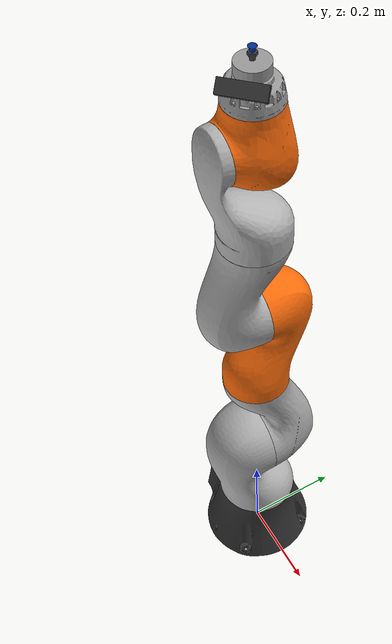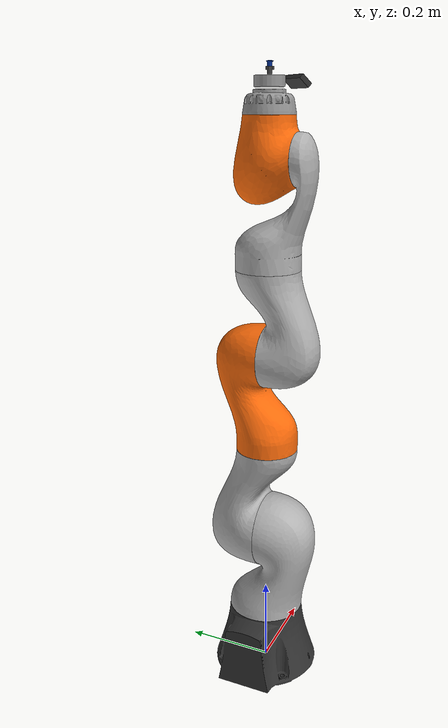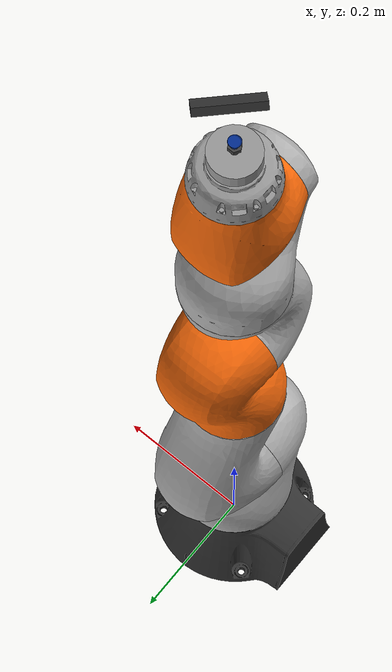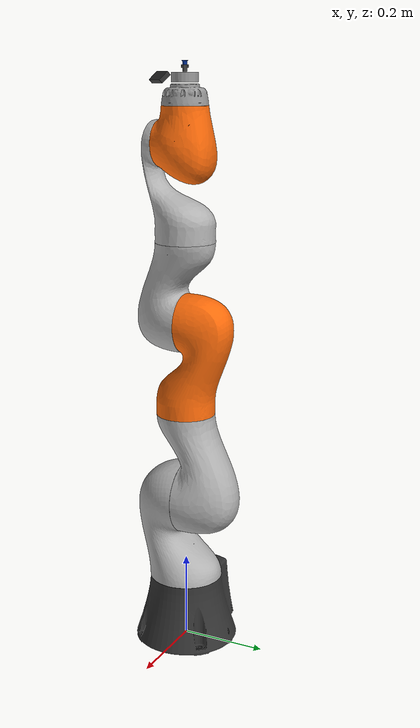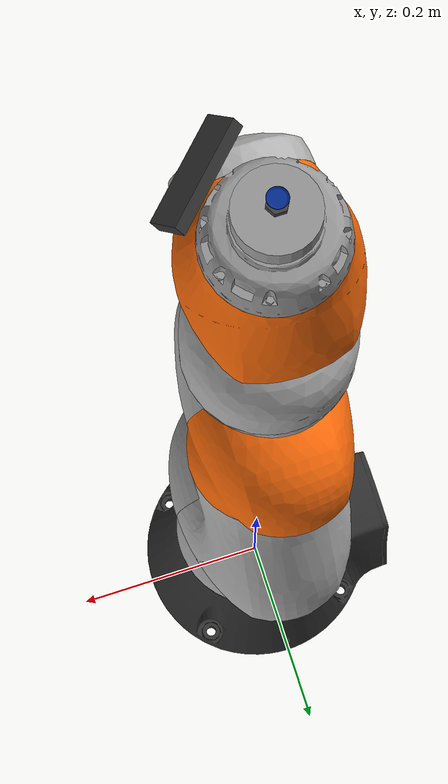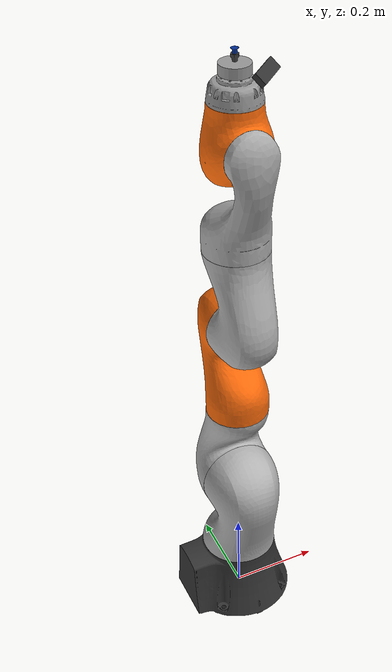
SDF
<?xml version="1.0" ?>
<sdf version='1.6'>
  <world name='default'>
  <model name='lbr_iiwa_with_wsg50'>
    <link name='lbr_iiwa_link_0'>
      <pose frame=''>0 0 0 0 -0 0</pose>
      <inertial>
        <pose frame=''>-0.1 0 0.07 0 -0 0</pose>
        <mass>0</mass>
        <inertia>
          <ixx>0.05</ixx>
          <ixy>0</ixy>
          <ixz>0</ixz>
          <iyy>0.06</iyy>
          <iyz>0</iyz>
          <izz>0.03</izz>
        </inertia>
      </inertial>
      <collision name='lbr_iiwa_link_0_collision'>
        <pose frame=''>0 0 0 0 -0 0</pose>
        <geometry>
          <mesh>
            <scale>1 1 1</scale>
            <uri>/meshes/link_0.stl</uri>
          </mesh>
        </geometry>
      </collision>
      <visual name='lbr_iiwa_link_0_visual'>
        <pose frame=''>0 0 0 0 -0 0</pose>
        <geometry>
          <mesh>
            <scale>1 1 1</scale>
            <uri>meshes/link_0.obj</uri>
          </mesh>
        </geometry>
        <material>
          <ambient>1 0 0 1</ambient>
          <diffuse>0.2 0.2 0.2 1.0</diffuse>
          <specular>0.4 0.4 0.4 1</specular>
          <emissive>0 0 0 0</emissive>
        </material>
      </visual>
    </link>
    <link name='lbr_iiwa_link_1'>
      <pose frame=''>0 0 0.1575 0 -0 0</pose>
      <inertial>
        <pose frame=''>0 -0.03 0.12 0 -0 0</pose>
        <mass>0.4</mass>
        <inertia>
          <ixx>0.1</ixx>
          <ixy>0</ixy>
          <ixz>0</ixz>
          <iyy>0.09</iyy>
          <iyz>0</iyz>
          <izz>0.02</izz>
        </inertia>
      </inertial>
      <collision name='lbr_iiwa_link_1_collision'>
        <pose frame=''>0 0 0 0 -0 0</pose>
        <geometry>
          <mesh>
            <scale>1 1 1</scale>
            <uri>meshes/link_1.stl</uri>
          </mesh>
        </geometry>
      </collision>
      <visual name='lbr_iiwa_link_1_visual'>
        <pose frame=''>0 0 0 0 -0 0</pose>
        <geometry>
          <mesh>
            <scale>1 1 1</scale>
            <uri>meshes/link_1.obj</uri>
          </mesh>
        </geometry>
        <material>
          <ambient>1 0 0 1</ambient>
          <diffuse>0.7 0.7 0.7 1.0</diffuse>
          <specular>0.5 0.5 0.5 1</specular>
          <emissive>0 0 0 0</emissive>
        </material>
      </visual>
    </link>
    <joint name='J0' type='revolute'>
      <child>lbr_iiwa_link_1</child>
      <parent>lbr_iiwa_link_0</parent>
      <axis>
        <xyz>0 0 1</xyz>
        <limit>
          <lower>-2.96706</lower>
          <upper>2.96706</upper>
          <effort>300</effort>
          <velocity>10</velocity>
        </limit>
        <dynamics>
          <damping>0.5</damping>
          <friction>0</friction>
          <spring_reference>0</spring_reference>
          <spring_stiffness>0</spring_stiffness>
        </dynamics>
      </axis>
    </joint>
    <link name='lbr_iiwa_link_2'>
      <pose frame=''>0 0 0.36 1.5708 -0 -3.14159</pose>
      <inertial>
        <pose frame=''>0.0003 0.059 0.042 0 -0 0</pose>
        <mass>0.4</mass>
        <inertia>
          <ixx>0.05</ixx>
          <ixy>0</ixy>
          <ixz>0</ixz>
          <iyy>0.018</iyy>
          <iyz>0</iyz>
          <izz>0.044</izz>
        </inertia>
      </inertial>
      <collision name='lbr_iiwa_link_2_collision'>
        <pose frame=''>0 0 0 0 -0 0</pose>
        <geometry>
          <mesh>
            <scale>1 1 1</scale>
            <uri>meshes/link_2.stl</uri>
          </mesh>
        </geometry>
      </collision>
      <visual name='lbr_iiwa_link_2_visual'>
        <pose frame=''>0 0 0 0 -0 0</pose>
        <geometry>
          <mesh>
            <scale>1 1 1</scale>
            <uri>meshes/link_2.obj</uri>
          </mesh>
        </geometry>
        <material>
          <ambient>1 0 0 1</ambient>
          <diffuse>0.7 0.7 0.7 1.0</diffuse>
          <specular>0.5 0.5 0.5 1</specular>
          <emissive>0 0 0 0</emissive>
        </material>
      </visual>
    </link>
    <joint name='J1' type='revolute'>
      <child>lbr_iiwa_link_2</child>
      <parent>lbr_iiwa_link_1</parent>
      <axis>
        <xyz>0 0 1</xyz>
        <limit>
          <lower>-2.0944</lower>
          <upper>2.0944</upper>
          <effort>300</effort>
          <velocity>10</velocity>
        </limit>
        <dynamics>
          <damping>0.5</damping>
          <friction>0</friction>
          <spring_reference>0</spring_reference>
          <spring_stiffness>0</spring_stiffness>
        </dynamics>
      </axis>
    </joint>
    <link name='lbr_iiwa_link_3'>
      <pose frame=''>0 -0 0.5645 0 0 0</pose>
      <inertial>
        <pose frame=''>0 0.03 0.13 0 -0 0</pose>
        <mass>0.3</mass>
        <inertia>
          <ixx>0.08</ixx>
          <ixy>0</ixy>
          <ixz>0</ixz>
          <iyy>0.075</iyy>
          <iyz>0</iyz>
          <izz>0.01</izz>
        </inertia>
      </inertial>
      <collision name='lbr_iiwa_link_3_collision'>
        <pose frame=''>0 0 0 0 -0 0</pose>
        <geometry>
          <mesh>
            <scale>1 1 1</scale>
            <uri>meshes/link_3.stl</uri>
          </mesh>
        </geometry>
      </collision>
      <visual name='lbr_iiwa_link_3_visual'>
        <pose frame=''>0 0 0 0 -0 0</pose>
        <geometry>
          <mesh>
            <scale>1 1 1</scale>
            <uri>meshes/link_3.obj</uri>
          </mesh>
        </geometry>
        <material>
          <ambient>1 0 0 1</ambient>
          <diffuse>1.0 0.423529411765 0.0392156862745 1.0</diffuse>
          <specular>0.5 0.5 0.5 1</specular>
          <emissive>0 0 0 0</emissive>
        </material>
      </visual>
    </link>
    <joint name='J2' type='revolute'>
      <child>lbr_iiwa_link_3</child>
      <parent>lbr_iiwa_link_2</parent>
      <axis>
        <xyz>0 0 1</xyz>
        <limit>
          <lower>-2.96706</lower>
          <upper>2.96706</upper>
          <effort>300</effort>
          <velocity>10</velocity>
        </limit>
        <dynamics>
          <damping>0.5</damping>
          <friction>0</friction>
          <spring_reference>0</spring_reference>
          <spring_stiffness>0</spring_stiffness>
        </dynamics>
      </axis>
    </joint>
    <link name='lbr_iiwa_link_4'>
      <pose frame=''>0 -0 0.78 1.5708 0 0</pose>
      <inertial>
        <pose frame=''>0 0.067 0.034 0 -0 0</pose>
        <mass>0.27</mass>
        <inertia>
          <ixx>0.03</ixx>
          <ixy>0</ixy>
          <ixz>0</ixz>
          <iyy>0.01</iyy>
          <iyz>0</iyz>
          <izz>0.029</izz>
        </inertia>
      </inertial>
      <collision name='lbr_iiwa_link_4_collision'>
        <pose frame=''>0 0 0 0 -0 0</pose>
        <geometry>
          <mesh>
            <scale>1 1 1</scale>
            <uri>meshes/link_4.stl</uri>
          </mesh>
        </geometry>
      </collision>
      <visual name='lbr_iiwa_link_4_visual'>
        <pose frame=''>0 0 0 0 -0 0</pose>
        <geometry>
          <mesh>
            <scale>1 1 1</scale>
            <uri>meshes/link_4.obj</uri>
          </mesh>
        </geometry>
        <material>
          <ambient>1 0 0 1</ambient>
          <diffuse>0.7 0.7 0.7 1.0</diffuse>
          <specular>0.5 0.5 0.5 1</specular>
          <emissive>0 0 0 0</emissive>
        </material>
      </visual>
    </link>
    <joint name='J3' type='revolute'>
      <child>lbr_iiwa_link_4</child>
      <parent>lbr_iiwa_link_3</parent>
      <axis>
        <xyz>0 0 1</xyz>
        <limit>
          <lower>-2.0944</lower>
          <upper>2.0944</upper>
          <effort>300</effort>
          <velocity>10</velocity>
        </limit>
        <dynamics>
          <damping>0.5</damping>
          <friction>0</friction>
          <spring_reference>0</spring_reference>
          <spring_stiffness>0</spring_stiffness>
        </dynamics>
      </axis>
    </joint>
    <link name='lbr_iiwa_link_5'>
      <pose frame=''>0 -0 0.9645 0 -0 -3.14159</pose>
      <inertial>
        <pose frame=''>0.0001 0.021 0.076 0 -0 0</pose>
        <mass>0.17</mass>
        <inertia>
          <ixx>0.02</ixx>
          <ixy>0</ixy>
          <ixz>0</ixz>
          <iyy>0.018</iyy>
          <iyz>0</iyz>
          <izz>0.005</izz>
        </inertia>
      </inertial>
      <collision name='lbr_iiwa_link_5_collision'>
        <pose frame=''>0 0 0 0 -0 0</pose>
        <geometry>
          <mesh>
            <scale>1 1 1</scale>
            <uri>meshes/link_5.stl</uri>
          </mesh>
        </geometry>
      </collision>
      <visual name='lbr_iiwa_link_5_visual'>
        <pose frame=''>0 0 0 0 -0 0</pose>
        <geometry>
          <mesh>
            <scale>1 1 1</scale>
            <uri>meshes/link_5.obj</uri>
          </mesh>
        </geometry>
        <material>
          <ambient>1 0 0 1</ambient>
          <diffuse>0.7 0.7 0.7 1.0</diffuse>
          <specular>0.5 0.5 0.5 1</specular>
          <emissive>0 0 0 0</emissive>
        </material>
      </visual>
    </link>
    <joint name='J4' type='revolute'>
      <child>lbr_iiwa_link_5</child>
      <parent>lbr_iiwa_link_4</parent>
      <axis>
        <xyz>0 0 1</xyz>
        <limit>
          <lower>-2.96706</lower>
          <upper>2.96706</upper>
          <effort>300</effort>
          <velocity>10</velocity>
        </limit>
        <dynamics>
          <damping>0.5</damping>
          <friction>0</friction>
          <spring_reference>0</spring_reference>
          <spring_stiffness>0</spring_stiffness>
        </dynamics>
      </axis>
    </joint>
    <link name='lbr_iiwa_link_6'>
      <pose frame=''>0 0 1.18 1.5708 -0 -3.14159</pose>
      <inertial>
        <pose frame=''>0 0.0006 0.0004 0 -0 0</pose>
        <mass>0.18</mass>
        <inertia>
          <ixx>0.005</ixx>
          <ixy>0</ixy>
          <ixz>0</ixz>
          <iyy>0.0036</iyy>
          <iyz>0</iyz>
          <izz>0.0047</izz>
        </inertia>
      </inertial>
      <collision name='lbr_iiwa_link_6_collision'>
        <pose frame=''>0 0 0 0 -0 0</pose>
        <geometry>
          <mesh>
            <scale>1 1 1</scale>
            <uri>meshes/link_6.stl</uri>
          </mesh>
        </geometry>
      </collision>
      <visual name='lbr_iiwa_link_6_visual'>
        <pose frame=''>0 0 0 0 -0 0</pose>
        <geometry>
          <mesh>
            <scale>1 1 1</scale>
            <uri>meshes/link_6.obj</uri>
          </mesh>
        </geometry>
        <material>
          <ambient>1 0 0 1</ambient>
          <diffuse>1.0 0.423529411765 0.0392156862745 1.0</diffuse>
          <specular>0.5 0.5 0.5 1</specular>
          <emissive>0 0 0 0</emissive>
        </material>
      </visual>
    </link>
    <joint name='J5' type='revolute'>
      <child>lbr_iiwa_link_6</child>
      <parent>lbr_iiwa_link_5</parent>
      <axis>
        <xyz>0 0 1</xyz>
        <limit>
          <lower>-2.0944</lower>
          <upper>2.0944</upper>
          <effort>300</effort>
          <velocity>10</velocity>
        </limit>
        <dynamics>
          <damping>0.5</damping>
          <friction>0</friction>
          <spring_reference>0</spring_reference>
          <spring_stiffness>0</spring_stiffness>
        </dynamics>
      </axis>
    </joint>
    <link name='lbr_iiwa_link_7'>
      <pose frame=''>0 0 1.261 0 0 0</pose>
      <inertial>
        <pose frame=''>0 0 0.02 0 -0 0</pose>
        <mass>0.13</mass>
        <inertia>
          <ixx>0.001</ixx>
          <ixy>0</ixy>
          <ixz>0</ixz>
          <iyy>0.001</iyy>
          <iyz>0</iyz>
          <izz>0.001</izz>
        </inertia>
      </inertial>
      <collision name='lbr_iiwa_link_7_collision'>
        <pose frame=''>0 0 0 0 -0 0</pose>
        <geometry>
          <mesh>
            <scale>1 1 1</scale>
            <uri>meshes/link_7.stl</uri>
          </mesh>
        </geometry>
      </collision>
      <visual name='lbr_iiwa_link_7_visual'>
        <pose frame=''>0 0 0 0 -0 0</pose>
        <geometry>
          <mesh>
            <scale>1 1 1</scale>
            <uri>meshes/link_7.obj</uri>
          </mesh>
        </geometry>
        <material>
          <ambient>1 0 0 1</ambient>
          <diffuse>0.6 0.6 0.6 1</diffuse>
          <specular>0.5 0.5 0.5 1</specular>
          <emissive>0 0 0 0</emissive>
        </material>
      </visual>
    </link>
    <joint name='J6' type='revolute'>
      <child>lbr_iiwa_link_7</child>
      <parent>lbr_iiwa_link_6</parent>
      <axis>
        <xyz>0 0 1</xyz>
        <limit>
          <lower>-3.05433</lower>
          <upper>3.05433</upper>
          <effort>300</effort>
          <velocity>10</velocity>
        </limit>
        <dynamics>
          <damping>0.5</damping>
          <friction>0</friction>
          <spring_reference>0</spring_reference>
          <spring_stiffness>0</spring_stiffness>
        </dynamics>
      </axis>
    </joint>

    <!-- Attach the base of the gripper to the end of the arm -->
    <joint name='gripper_to_arm' type='continuous'>
      <parent>lbr_iiwa_link_7</parent>
      <child>gripper_base_link</child>
      <axis>
        <xyz>0 0 1</xyz>
      </axis>
    </joint>

    <link name='gripper_base_link'>
      <pose frame=''>0 0 1.32 0 0 0</pose>
      <inertial>
        <mass>0.15</mass>
        <inertia>
          <ixx>0.001</ixx>
          <ixy>0</ixy>
          <ixz>0</ixz>
          <iyy>0.001</iyy>
          <iyz>0</iyz>
          <izz>0.001</izz>
        </inertia>
      </inertial>
      <visual name='gripper_base_link_visual'>
	<geometry>
	   <cylinder>
	     <radius>.03</radius>
	     <length>.02</length>
	   </cylinder>
        </geometry>
        <material>
          <ambient>1 0 0 1</ambient>
          <diffuse>0.6 0.6 0.6 1</diffuse>
          <specular>0.5 0.5 0.5 1</specular>
          <emissive>0 0 0 0</emissive>
        </material>
      </visual>
        <collision name='gripper_base_link_collision'>
        <geometry>
            <mesh>
              <scale>1 1 1 </scale>
              <uri>meshes_weiss/palm_collision.stl</uri>
            </mesh>
        </geometry>
        <material>
          <ambient>1 0 0 1</ambient>
          <diffuse>0.6 0.6 0.6 1</diffuse>
          <specular>0.5 0.5 0.5 1</specular>
          <emissive>0 0 0 0</emissive>
        </material>
      </collision>
    </link>

    <joint name='suction_base_joint' type='fixed'>
      <parent>gripper_base_link</parent>
      <child>suction_base</child>
    </joint>

    <link name='suction_base'>
     <contact>
       <lateral_friction>0.8</lateral_friction>
       <spinning_friction>.1</spinning_friction>
     </contact>
      <pose frame=''>0 0.0 1.34 -1.5708 0.0 0</pose>
      <inertial>
        <mass>0.0056</mass>
        <inertia>
          <ixx>0.00001</ixx>
          <ixy>0</ixy>
          <ixz>0</ixz>
          <iyy>0.00001</iyy>
          <iyz>0</iyz>
          <izz>0.00001</izz>
        </inertia>
      </inertial>
      <visual name='left_finger_visual'>
        <geometry>
            <mesh>
              <scale>1 1 1 </scale>
              <uri>meshes_suction/10_01_01_12397_nut.obj</uri>
            </mesh>
        </geometry>
        <material>
            <ambient>0 0 0 1</ambient>
            <diffuse>0.25 0.25 0.25 1</diffuse>
            <specular>0.5 0.5 0.5 1</specular>
            <emissive>0 0 0 0</emissive>
        </material>
      </visual>
      <collision name='left_finger_collision'>
        <geometry>
            <mesh>
              <scale>1 1 1 </scale>
              <uri>meshes_suction/10_01_01_12397_nut.obj</uri>
            </mesh>
        </geometry>

      </collision>
    </link>

   <joint name='suction_tip_joint' type='fixed'>
      <parent>suction_base</parent>
      <child>suction_tip</child>
    </joint>

   <link name='suction_tip'>
    <contact>
        <lateral_friction>0.8</lateral_friction>
        <spinning_friction>.1</spinning_friction>
      </contact>
      <pose frame=''>0 0.0 1.35 -1.5708 0 0.0</pose>
      <inertial>
        <mass>0.0056</mass>
        <inertia>
          <ixx>0.00001</ixx>
          <ixy>0</ixy>
          <ixz>0</ixz>
          <iyy>0.00001</iyy>
          <iyz>0</iyz>
          <izz>0.00001</izz>
        </inertia>
      </inertial>
      <visual name='right_finger_visual'>
        <geometry>
            <mesh>
              <scale>1 1 1 </scale>
              <uri>meshes_suction/10_01_01_12397_suction.obj</uri>
            </mesh>
        </geometry>
	<material>
          <ambient>1 1 1 1</ambient>
          <diffuse>0.007502 0.176416 0.568442 1</diffuse>
          <specular>0.5 0.5 0.5 1</specular>
          <emissive>0 0 0 0</emissive>
	</material>
      </visual>
      <collision name='right_finger_collision'>
        <geometry>
            <mesh>
              <scale>1 1 1 </scale>
              <uri>meshes_suction/10_01_01_12397_suction.obj</uri>
            </mesh>
        </geometry>
      </collision>
    </link>

    <!-- attach camera object to gripper-->

    <joint name='camera_joint' type='fixed'>
      <parent>gripper_base_link</parent>
      <child>camera</child>
    </joint>

    <link name='camera'>
    <contact>
        <lateral_friction>0.8</lateral_friction>
        <spinning_friction>.1</spinning_friction>
      </contact>
      <pose frame=''>0.04 -0.04 1.32 .75 0 0.78539816339</pose>
      <inertial>
        <pose frame=''>0 0 0 0 0 0</pose>
        <mass>0.000108</mass>
        <inertia>
          <ixx>0.0001</ixx>
          <ixy>0</ixy>
          <ixz>0</ixz>
          <iyy>0.0001</iyy>
          <iyz>0</iyz>
          <izz>0.0001</izz>
        </inertia>
      </inertial>
      <visual name='camera_visual'>
        <pose frame=''>0 0 0 0 0 0</pose>
        <geometry>
            <box><size>.08 .025 0.01</size></box>
        </geometry>
        <material>
            <ambient>1 0 0 1</ambient>
            <diffuse>0.2 0.2 0.2 1.0</diffuse>
            <specular>0.4 0.4 0.4 1</specular>
            <emissive>0 0 0 0</emissive>
        </material>
      </visual>
      <collision name='camera_collision'>
        <pose frame=''>0 0 0 0 0 0</pose>
        <geometry>
            <box><size>.08 .025 0.01</size></box>
        </geometry>
      </collision>
    </link>

  </model>
</world>
</sdf>
